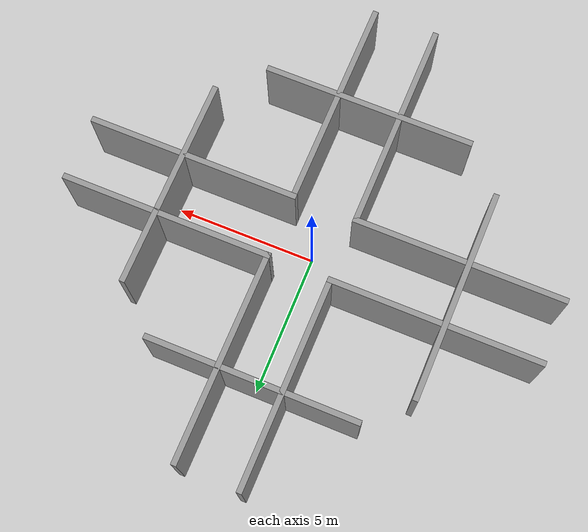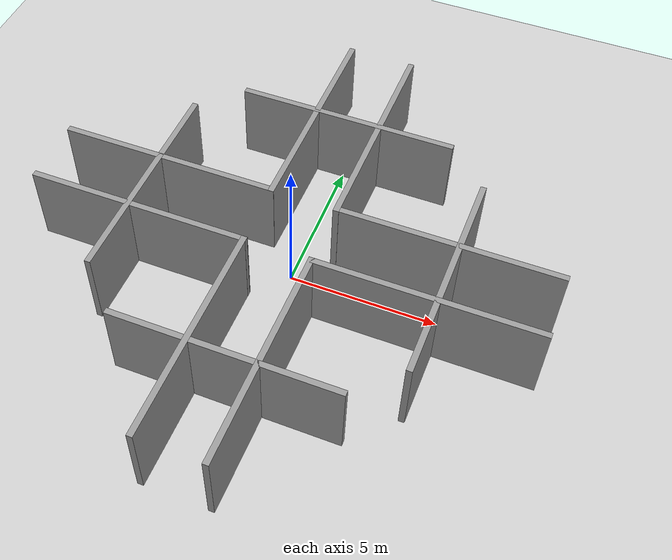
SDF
<sdf version="1.7">
 <world name="default">
  <light name="sun" type="directional">
   <pose>0 0 10 0 -0 0</pose>
   <diffuse>0.8 0.8 0.8 1</diffuse>
   <specular>0.2 0.2 0.2 1</specular>
   <attenuation>
    <range>1000</range>
    <constant>0.9</constant>
    <linear>0.01</linear>
    <quadratic>0.001</quadratic>
   </attenuation>
   <direction>-0.5 0.1 -0.9</direction>
   <spot><inner_angle>0</inner_angle><outer_angle>0</outer_angle><falloff>0</falloff></spot>
  </light>
  <model name="ground_plane">
   <static>1</static>
   <link name="link">
    <collision name="collision">
     <geometry><plane><normal>0 0 1</normal><size>100 100</size></plane></geometry>
     <surface>
      <contact><collide_bitmask>65535</collide_bitmask></contact>
      <friction><ode><mu>100</mu><mu2>50</mu2></ode></friction>
     </surface>
    </collision>
    <visual name="visual">
     <cast_shadows>0</cast_shadows>
     <geometry><plane><normal>0 0 1</normal><size>100 100</size></plane></geometry>
     <material>
      <script><uri>file://media/materials/scripts/gazebo.material</uri><name>Gazebo/Grey</name></script>
     </material>
    </visual>
   </link>
  </model>
  <gravity>0 0 -9.8</gravity>
  <magnetic_field>6e-06 2.3e-05 -4.2e-05</magnetic_field>
  <atmosphere type="adiabatic"/>
  <physics type="ode">
   <max_step_size>0.001</max_step_size>
   <real_time_factor>1</real_time_factor>
   <real_time_update_rate>1000</real_time_update_rate>
  </physics>
  <scene><ambient>0.4 0.4 0.4 1</ambient><background>0.7 0.7 0.7 1</background><shadows>1</shadows></scene>
  <spherical_coordinates>
   <surface_model>EARTH_WGS84</surface_model>
   <latitude_deg>0</latitude_deg>
   <longitude_deg>0</longitude_deg>
   <elevation>0</elevation>
   <heading_deg>0</heading_deg>
  </spherical_coordinates>
  <model name="grey_wall">
   <static>1</static>
   <link name="link">
    <pose>0 0 1.4 0 -0 0</pose>
    <collision name="collision"><geometry><box><size>7.5 0.2 2.8</size></box></geometry></collision>
    <visual name="visual">
     <cast_shadows>0</cast_shadows>
     <geometry><box><size>7.5 0.2 2.8</size></box></geometry>
     <material>
      <script>
       <uri>model://grey_wall/materials/scripts</uri>
       <uri>model://grey_wall/materials/textures</uri>
       <name>vrc/grey_wall</name>
      </script>
     </material>
    </visual>
   </link>
   <pose>4.76212 1.10951 0 0 -0 0</pose>
  </model>
  <model name="grey_wall_clone_1">
   <static>1</static>
   <link name="link">
    <pose>0 0 1.4 0 -0 0</pose>
    <collision name="collision"><geometry><box><size>7.5 0.2 2.8</size></box></geometry></collision>
    <visual name="visual">
     <cast_shadows>0</cast_shadows>
     <geometry><box><size>7.5 0.2 2.8</size></box></geometry>
     <material>
      <script>
       <uri>model://grey_wall/materials/scripts</uri>
       <uri>model://grey_wall/materials/textures</uri>
       <name>vrc/grey_wall</name>
      </script>
     </material>
    </visual>
   </link>
   <pose>4.75541 -1.11288 0 0 -0 0</pose>
  </model>
  <model name="grey_wall_clone_4">
   <static>1</static>
   <link name="link">
    <pose>0 0 1.4 0 -0 0</pose>
    <collision name="collision"><geometry><box><size>7.5 0.2 2.8</size></box></geometry></collision>
    <visual name="visual">
     <cast_shadows>0</cast_shadows>
     <geometry><box><size>7.5 0.2 2.8</size></box></geometry>
     <material>
      <script>
       <uri>model://grey_wall/materials/scripts</uri>
       <uri>model://grey_wall/materials/textures</uri>
       <name>vrc/grey_wall</name>
      </script>
     </material>
    </visual>
   </link>
   <pose>1.07303 -4.76672 0 0 -0 1.56079</pose>
  </model>
  <model name="grey_wall_clone_4_clone_2">
   <static>1</static>
   <link name="link">
    <pose>0 0 1.4 0 -0 0</pose>
    <collision name="collision"><geometry><box><size>7.5 0.2 2.8</size></box></geometry></collision>
    <visual name="visual">
     <cast_shadows>0</cast_shadows>
     <geometry><box><size>7.5 0.2 2.8</size></box></geometry>
     <material>
      <script>
       <uri>model://grey_wall/materials/scripts</uri>
       <uri>model://grey_wall/materials/textures</uri>
       <name>vrc/grey_wall</name>
      </script>
     </material>
    </visual>
   </link>
   <pose>1.15065 4.75318 0 0 -0 1.56079</pose>
  </model>
  <model name="grey_wall_clone_4_clone_3">
   <static>1</static>
   <link name="link">
    <pose>0 0 1.4 0 -0 0</pose>
    <collision name="collision"><geometry><box><size>7.5 0.2 2.8</size></box></geometry></collision>
    <visual name="visual">
     <cast_shadows>0</cast_shadows>
     <geometry><box><size>7.5 0.2 2.8</size></box></geometry>
     <material>
      <script>
       <uri>model://grey_wall/materials/scripts</uri>
       <uri>model://grey_wall/materials/textures</uri>
       <name>vrc/grey_wall</name>
      </script>
     </material>
    </visual>
   </link>
   <pose>5.12171 -0.026691 0 0 -0 1.56079</pose>
  </model>
  <model name="grey_wall_clone_4_clone_6">
   <static>1</static>
   <link name="link">
    <pose>0 0 1.4 0 -0 0</pose>
    <collision name="collision"><geometry><box><size>7.5 0.2 2.8</size></box></geometry></collision>
    <visual name="visual">
     <cast_shadows>0</cast_shadows>
     <geometry><box><size>7.5 0.2 2.8</size></box></geometry>
     <material>
      <script>
       <uri>model://grey_wall/materials/scripts</uri>
       <uri>model://grey_wall/materials/textures</uri>
       <name>vrc/grey_wall</name>
      </script>
     </material>
    </visual>
   </link>
   <pose>-1.07103 4.77282 0 0 -0 1.56079</pose>
  </model>
  <model name="grey_wall_clone_4_clone_10">
   <static>1</static>
   <link name="link">
    <pose>0 0 1.4 0 -0 0</pose>
    <collision name="collision"><geometry><box><size>7.5 0.2 2.8</size></box></geometry></collision>
    <visual name="visual">
     <cast_shadows>0</cast_shadows>
     <geometry><box><size>7.5 0.2 2.8</size></box></geometry>
     <material>
      <script>
       <uri>model://grey_wall/materials/scripts</uri>
       <uri>model://grey_wall/materials/textures</uri>
       <name>vrc/grey_wall</name>
      </script>
     </material>
    </visual>
   </link>
   <pose>-1.16109 -4.7689 0 0 -0 1.56079</pose>
  </model>
  <model name="grey_wall_clone_4_clone_11">
   <static>1</static>
   <link name="link">
    <pose>0 0 1.4 0 -0 0</pose>
    <collision name="collision"><geometry><box><size>7.5 0.2 2.8</size></box></geometry></collision>
    <visual name="visual">
     <cast_shadows>0</cast_shadows>
     <geometry><box><size>7.5 0.2 2.8</size></box></geometry>
     <material>
      <script>
       <uri>model://grey_wall/materials/scripts</uri>
       <uri>model://grey_wall/materials/textures</uri>
       <name>vrc/grey_wall</name>
      </script>
     </material>
    </visual>
   </link>
   <pose>-5.09966 0.041218 0 0 -0 1.56079</pose>
  </model>
  <model name="grey_wall_clone_5">
   <static>1</static>
   <link name="link">
    <pose>0 0 1.4 0 -0 0</pose>
    <collision name="collision"><geometry><box><size>7.5 0.2 2.8</size></box></geometry></collision>
    <visual name="visual">
     <cast_shadows>0</cast_shadows>
     <geometry><box><size>7.5 0.2 2.8</size></box></geometry>
     <material>
      <script>
       <uri>model://grey_wall/materials/scripts</uri>
       <uri>model://grey_wall/materials/textures</uri>
       <name>vrc/grey_wall</name>
      </script>
     </material>
    </visual>
   </link>
   <pose>-4.76012 1.11807 0 0 -0 0</pose>
  </model>
  <model name="grey_wall_clone_6">
   <static>1</static>
   <link name="link">
    <pose>0 0 1.4 0 -0 0</pose>
    <collision name="collision"><geometry><box><size>7.5 0.2 2.8</size></box></geometry></collision>
    <visual name="visual">
     <cast_shadows>0</cast_shadows>
     <geometry><box><size>7.5 0.2 2.8</size></box></geometry>
     <material>
      <script>
       <uri>model://grey_wall/materials/scripts</uri>
       <uri>model://grey_wall/materials/textures</uri>
       <name>vrc/grey_wall</name>
      </script>
     </material>
    </visual>
   </link>
   <pose>-0.00094 5.08827 0 0 -0 0</pose>
  </model>
  <model name="grey_wall_clone_9">
   <static>1</static>
   <link name="link">
    <pose>0 0 1.4 0 -0 0</pose>
    <collision name="collision"><geometry><box><size>7.5 0.2 2.8</size></box></geometry></collision>
    <visual name="visual">
     <cast_shadows>0</cast_shadows>
     <geometry><box><size>7.5 0.2 2.8</size></box></geometry>
     <material>
      <script>
       <uri>model://grey_wall/materials/scripts</uri>
       <uri>model://grey_wall/materials/textures</uri>
       <name>vrc/grey_wall</name>
      </script>
     </material>
    </visual>
   </link>
   <pose>-4.77398 -1.11244 0 0 -0 0</pose>
  </model>
  <model name="grey_wall_clone_10">
   <static>1</static>
   <link name="link">
    <pose>0 0 1.4 0 -0 0</pose>
    <collision name="collision"><geometry><box><size>7.5 0.2 2.8</size></box></geometry></collision>
    <visual name="visual">
     <cast_shadows>0</cast_shadows>
     <geometry><box><size>7.5 0.2 2.8</size></box></geometry>
     <material>
      <script>
       <uri>model://grey_wall/materials/scripts</uri>
       <uri>model://grey_wall/materials/textures</uri>
       <name>vrc/grey_wall</name>
      </script>
     </material>
    </visual>
   </link>
   <pose>-0.028811 -5.10389 0 0 -0 0</pose>
  </model>
 </world>
</sdf>
